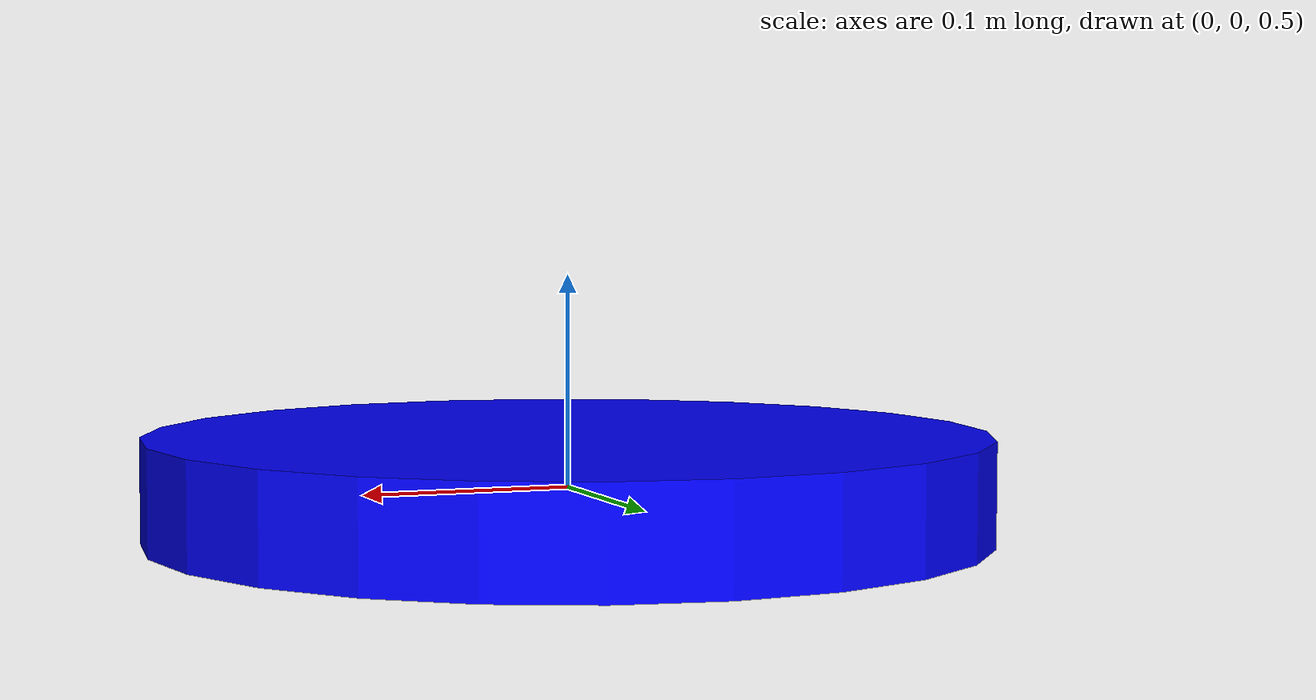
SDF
<?xml version="1.0"?>
<sdf version="1.6">
  <model name="simple_drone">
    <static>false</static>
    <link name="base_link">
      <pose>0 0 0.5 0 0 0</pose>

      <inertial>
        <mass>1.0</mass>
        <inertia>
          <ixx>0.01</ixx>
          <iyy>0.01</iyy>
          <izz>0.02</izz>
        </inertia>
      </inertial>

      <visual name="visual">
        <geometry>
          <cylinder>
            <radius>0.2</radius>
            <length>0.05</length>
          </cylinder>
        </geometry>
        <material>
          <ambient>0 0 1 1</ambient>
        </material>
      </visual>

      <collision name="collision">
        <geometry>
          <cylinder>
            <radius>0.2</radius>
            <length>0.05</length>
          </cylinder>
        </geometry>
      </collision>
    </link>

<plugin name="ignition::gazebo::systems::VelocityControl" filename="libignition-gazebo6-velocity-control-system.so"/>

  </model>
</sdf>
